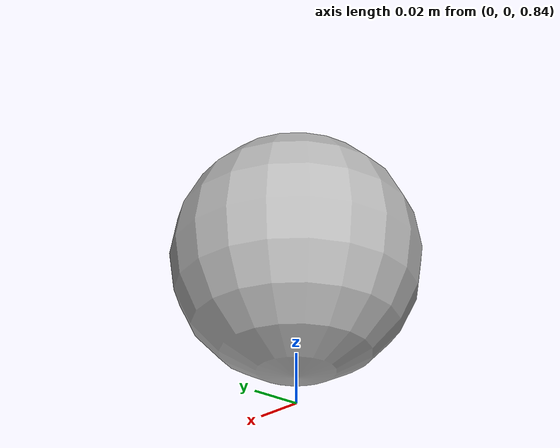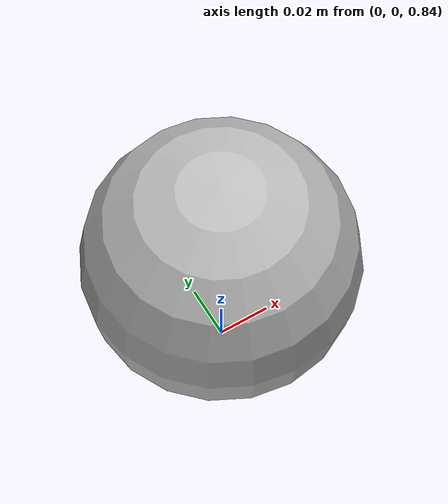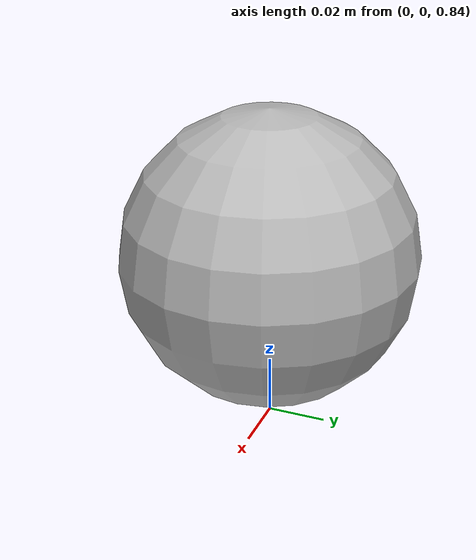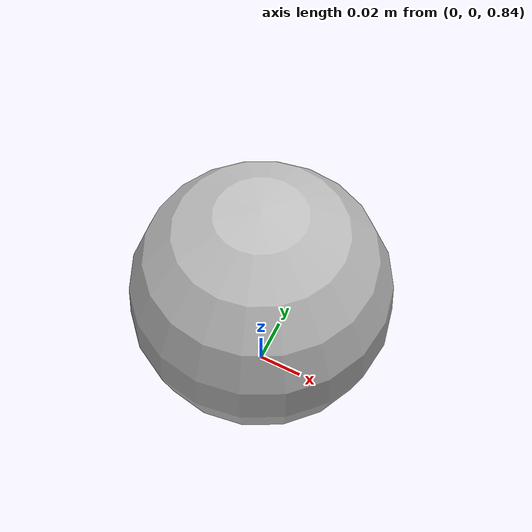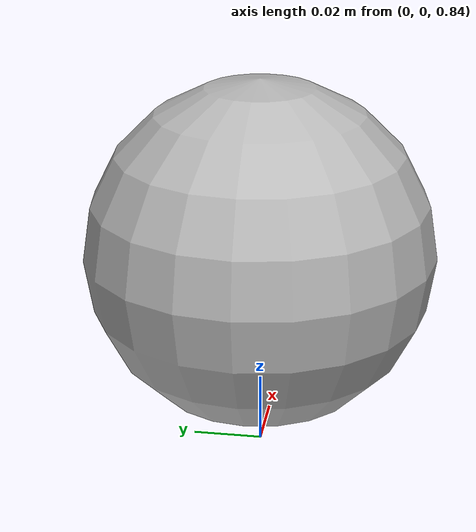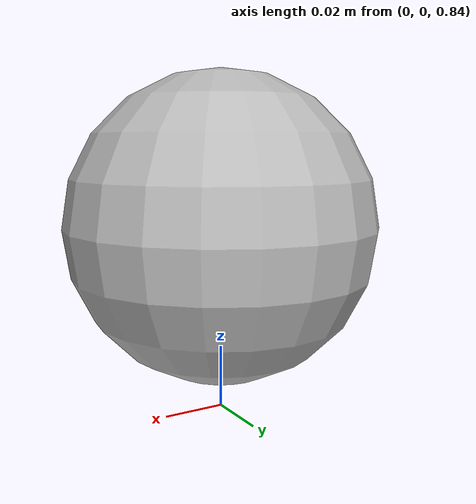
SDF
<?xml version='1.0'?>
<sdf version='1.6'>
		<model name="BodyContact">
			<self_collide>true</self_collide>
			<pose>0.0 0.0 0.0 0.0 0.0 0.0</pose>
			<!-- Start of parts of the pmodel BodyContact -->
			<!-- End of parts of the pmodel BodyContact -->

			<!-- Start of links of the pmodel BodyContact -->
			<!-- link full name is BodyContact::Tip -->
			<link name="1-Tip">
					<pose>0.0 0.0 0.0 0.0 0.0 0.0</pose>
					<inertial>
						<pose>0.0 0.0 0.0 0.0 0.0 0.0</pose>
						<inertia>
							<ixx>1.0</ixx>
							<ixy>0.0</ixy>
							<ixz>0.0</ixz>
							<iyy>1.0</iyy>
							<iyz>0.0</iyz>
							<izz>1.0</izz>
						</inertia>
						<mass>1.0</mass>
					</inertial>
					<!-- body full name is BodyContact::Tip::my_body -->
					<collision name="1--my_body">
						<laser_retro>0.0</laser_retro>
						<pose>0.0 0.0 0.8999999761581421 0.0 0.0 0.0</pose>
						<geometry>
							<sphere>
								<radius>0.05000000074505806</radius>
							</sphere>
						</geometry>
						<surface>
							<bounce>
								<restitution_coefficient>0.0</restitution_coefficient>
								<threshold>100000.0</threshold>
							</bounce>
							<friction>
								<ode>
									<mu>1.0</mu>
									<mu2>1.0</mu2>
									<fdir1>0.0 0.0 0.0</fdir1>
									<slip1>0.0</slip1>
									<slip2>0.0</slip2>
								</ode>
								<torsional>
									<coefficient>1.0</coefficient>
									<surface_radius>0.0</surface_radius>
								</torsional>
							</friction>
						</surface>
					</collision>
					<visual name="1--my_body">
						<laser_retro>0.0</laser_retro>
						<pose>0.0 0.0 0.8999999761581421 0.0 0.0 0.0</pose>
						<geometry>
							<sphere>
								<radius>0.05000000074505806</radius>
							</sphere>
						</geometry>
						<surface>
							<bounce>
								<restitution_coefficient>0.0</restitution_coefficient>
								<threshold>100000.0</threshold>
							</bounce>
							<friction>
								<ode>
									<mu>1.0</mu>
									<mu2>1.0</mu2>
									<fdir1>0.0 0.0 0.0</fdir1>
									<slip1>0.0</slip1>
									<slip2>0.0</slip2>
								</ode>
								<torsional>
									<coefficient>1.0</coefficient>
									<surface_radius>0.0</surface_radius>
								</torsional>
							</friction>
						</surface>
					</visual>
					<!-- WARNING: The SDF generator relies on annotations of the sensor my_contact_sensor to specify aspects of the
					sensor that are accounted for in the equations. -->
					<!-- sensor simple name is my_contact_sensor -->
					<sensor name="my_contact_sensor" type="contact">
						<pose>0.0 0.0 0.8999999761581421 -0.0 1.57079632679 0.0</pose>
						<visualize>true</visualize>
						<always_on>true</always_on>
						<update_rate>1.0</update_rate>
						<contact>
							<collision>2--my_body</collision>
						</contact>
					</sensor>
			</link>
			<!-- link full name is BodyContact::Rod -->
			<link name="2-Rod">
					<pose>0.0 0.0 0.0 0.0 0.0 0.0</pose>
					<inertial>
						<pose>0.0 0.0 0.0 0.0 0.0 0.0</pose>
						<inertia>
							<ixx>1.0</ixx>
							<ixy>0.0</ixy>
							<ixz>0.0</ixz>
							<iyy>1.0</iyy>
							<iyz>0.0</iyz>
							<izz>1.0</izz>
						</inertia>
						<mass>1.0</mass>
					</inertial>
					<!-- body full name is BodyContact::Rod::my_body -->
					<collision name="2--my_body">
						<laser_retro>0.0</laser_retro>
						<pose>0.0 0.0 0.8999999761581421 0.0 0.0 0.0</pose>
						<geometry>
							<sphere>
								<radius>0.05000000074505806</radius>
							</sphere>
						</geometry>
						<surface>
							<bounce>
								<restitution_coefficient>0.0</restitution_coefficient>
								<threshold>100000.0</threshold>
							</bounce>
							<friction>
								<ode>
									<mu>1.0</mu>
									<mu2>1.0</mu2>
									<fdir1>0.0 0.0 0.0</fdir1>
									<slip1>0.0</slip1>
									<slip2>0.0</slip2>
								</ode>
								<torsional>
									<coefficient>1.0</coefficient>
									<surface_radius>0.0</surface_radius>
								</torsional>
							</friction>
						</surface>
					</collision>
					<visual name="2--my_body">
						<laser_retro>0.0</laser_retro>
						<pose>0.0 0.0 0.8999999761581421 0.0 0.0 0.0</pose>
						<geometry>
							<sphere>
								<radius>0.05000000074505806</radius>
							</sphere>
						</geometry>
						<surface>
							<bounce>
								<restitution_coefficient>0.0</restitution_coefficient>
								<threshold>100000.0</threshold>
							</bounce>
							<friction>
								<ode>
									<mu>1.0</mu>
									<mu2>1.0</mu2>
									<fdir1>0.0 0.0 0.0</fdir1>
									<slip1>0.0</slip1>
									<slip2>0.0</slip2>
								</ode>
								<torsional>
									<coefficient>1.0</coefficient>
									<surface_radius>0.0</surface_radius>
								</torsional>
							</friction>
						</surface>
					</visual>
			</link>
			<!-- End of links of the pmodel BodyContact -->

			<!-- Start of joints of the pmodel BodyContact -->
			<!-- End of joints of the pmodel BodyContact -->

			<!-- Start of fixed connections of the pmodel BodyContact -->
			<!-- End of fixed connections of the pmodel BodyContact -->
		</model>
</sdf>
